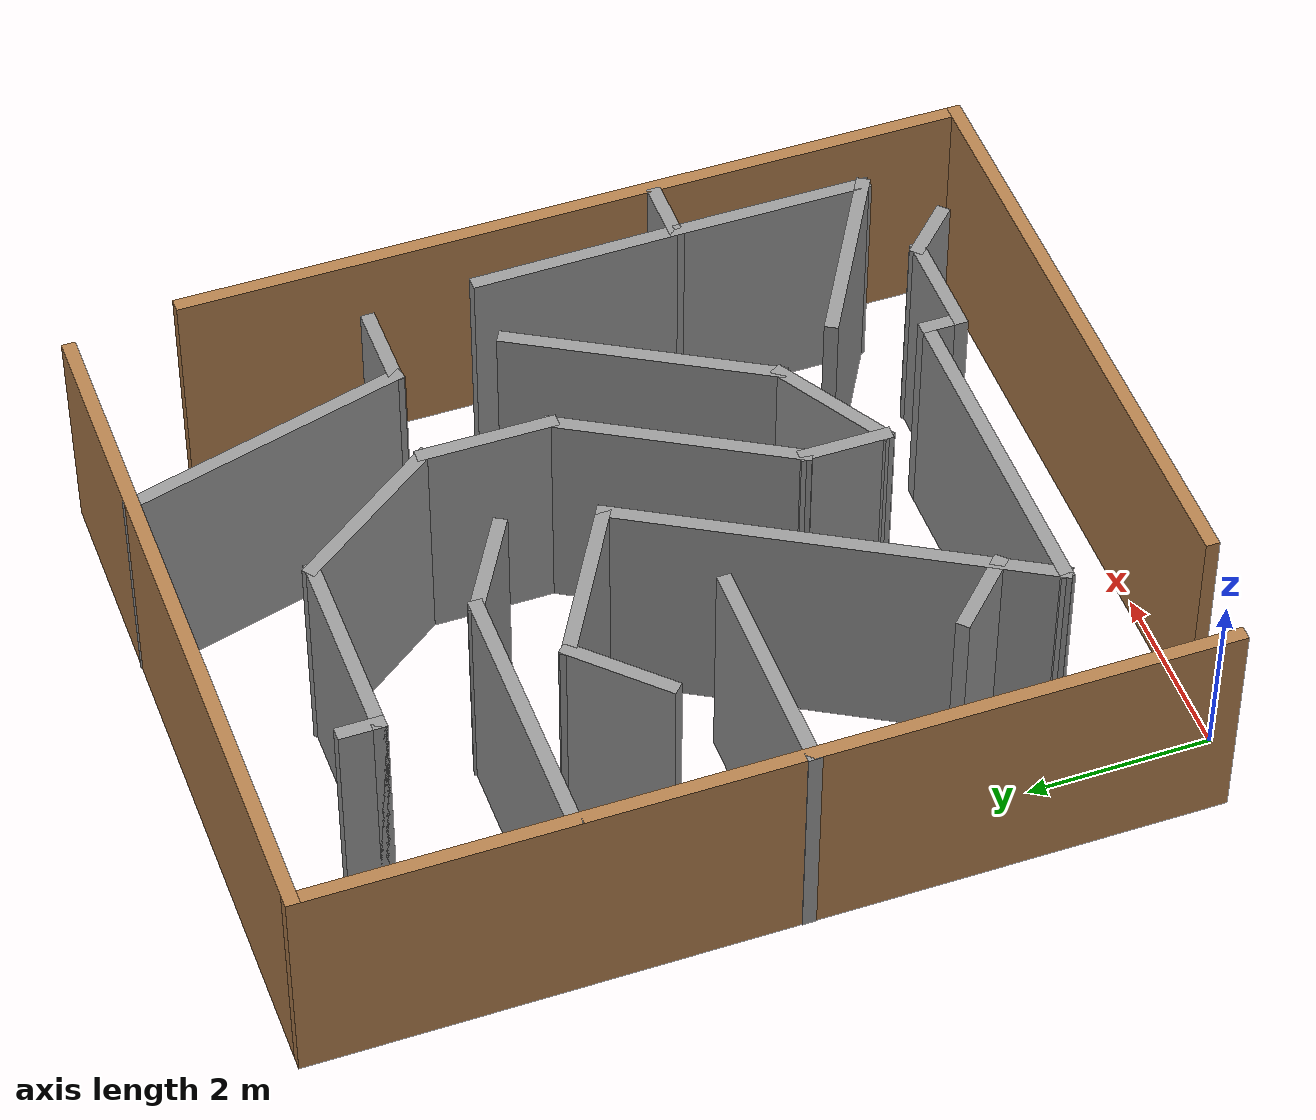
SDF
<?xml version='1.0'?>
<sdf version='1.7'>
  <model name='maze_2'>
    <pose>3.19542 4.92683 0 0 -0 0</pose>
    <link name='Wall_12'>
      <collision name='Wall_12_Collision'>
        <geometry>
          <box>
            <size>8.75 0.15 2.5</size>
          </box>
        </geometry>
        <pose>0 0 1.25 0 -0 0</pose>
      </collision>
      <visual name='Wall_12_Visual'>
        <pose>0 0 1.25 0 -0 0</pose>
        <geometry>
          <box>
            <size>8.75 0.15 2.5</size>
          </box>
        </geometry>
        <material>
          <script>
            <uri>file://media/materials/scripts/gazebo.material</uri>
            <name>Gazebo/Wood</name>
          </script>
          <ambient>0.996078 0.47451 0.0196078 1</ambient>
        </material>
        <meta>
          <layer>0</layer>
        </meta>
      </visual>
      <pose>3.92259 -0.630829 0 0 -0 -1.5708</pose>
    </link>
    <link name='Wall_13'>
      <collision name='Wall_13_Collision'>
        <geometry>
          <box>
            <size>6.75 0.15 2.5</size>
          </box>
        </geometry>
        <pose>0 0 1.25 0 -0 0</pose>
      </collision>
      <visual name='Wall_13_Visual'>
        <pose>0 0 1.25 0 -0 0</pose>
        <geometry>
          <box>
            <size>6.75 0.15 2.5</size>
          </box>
        </geometry>
        <material>
          <script>
            <uri>file://media/materials/scripts/gazebo.material</uri>
            <name>Gazebo/Wood</name>
          </script>
          <ambient>0.996078 0.47451 0.0196078 1</ambient>
        </material>
        <meta>
          <layer>0</layer>
        </meta>
      </visual>
      <pose>0.622594 -4.93083 0 0 -0 3.14159</pose>
    </link>
    <link name='Wall_15'>
      <collision name='Wall_15_Collision'>
        <geometry>
          <box>
            <size>4.75 0.15 2.5</size>
          </box>
        </geometry>
        <pose>0 0 1.25 0 -0 0</pose>
      </collision>
      <visual name='Wall_15_Visual'>
        <pose>0 0 1.25 0 -0 0</pose>
        <geometry>
          <box>
            <size>4.75 0.15 2.5</size>
          </box>
        </geometry>
        <material>
          <script>
            <uri>file://media/materials/scripts/gazebo.material</uri>
            <name>Gazebo/Grey</name>
          </script>
          <ambient>0 0 0 1</ambient>
        </material>
        <meta>
          <layer>0</layer>
        </meta>
      </visual>
      <pose>-1.44258 -1.42975 0 0 -0 1.0472</pose>
    </link>
    <link name='Wall_16'>
      <collision name='Wall_16_Collision'>
        <geometry>
          <box>
            <size>2 0.15 2.5</size>
          </box>
        </geometry>
        <pose>0 0 1.25 0 -0 0</pose>
      </collision>
      <visual name='Wall_16_Visual'>
        <pose>0 0 1.25 0 -0 0</pose>
        <geometry>
          <box>
            <size>2 0.15 2.5</size>
          </box>
        </geometry>
        <material>
          <script>
            <uri>file://media/materials/scripts/gazebo.material</uri>
            <name>Gazebo/Grey</name>
          </script>
          <ambient>0 0 0 1</ambient>
        </material>
        <meta>
          <layer>0</layer>
        </meta>
      </visual>
      <pose>-1.09366 1.02461 0 0 -0 2.61799</pose>
    </link>
    <link name='Wall_18'>
      <collision name='Wall_18_Collision'>
        <geometry>
          <box>
            <size>1 0.15 2.5</size>
          </box>
        </geometry>
        <pose>0 0 1.25 0 -0 0</pose>
      </collision>
      <visual name='Wall_18_Visual'>
        <pose>0 0 1.25 0 -0 0</pose>
        <geometry>
          <box>
            <size>1 0.15 2.5</size>
          </box>
        </geometry>
        <material>
          <script>
            <uri>file://media/materials/scripts/gazebo.material</uri>
            <name>Gazebo/Grey</name>
          </script>
          <ambient>0 0 0 1</ambient>
        </material>
        <meta>
          <layer>0</layer>
        </meta>
      </visual>
      <pose>-2.5473 -2.56248 0 0 -0 2.35619</pose>
    </link>
    <link name='Wall_20'>
      <collision name='Wall_20_Collision'>
        <geometry>
          <box>
            <size>2.5 0.15 2.5</size>
          </box>
        </geometry>
        <pose>0 0 1.25 0 -0 0</pose>
      </collision>
      <visual name='Wall_20_Visual'>
        <pose>0 0 1.25 0 -0 0</pose>
        <geometry>
          <box>
            <size>2.5 0.15 2.5</size>
          </box>
        </geometry>
        <material>
          <script>
            <uri>file://media/materials/scripts/gazebo.material</uri>
            <name>Gazebo/Grey</name>
          </script>
          <ambient>0 0 0 1</ambient>
        </material>
        <meta>
          <layer>0</layer>
        </meta>
      </visual>
      <pose>-2.74759 -0.256182 0 0 -0 0</pose>
    </link>
    <link name='Wall_22'>
      <collision name='Wall_22_Collision'>
        <geometry>
          <box>
            <size>1.25 0.15 2.5</size>
          </box>
        </geometry>
        <pose>0 0 1.25 0 -0 0</pose>
      </collision>
      <visual name='Wall_22_Visual'>
        <pose>0 0 1.25 0 -0 0</pose>
        <geometry>
          <box>
            <size>1.25 0.15 2.5</size>
          </box>
        </geometry>
        <material>
          <script>
            <uri>file://media/materials/scripts/gazebo.material</uri>
            <name>Gazebo/Grey</name>
          </script>
          <ambient>0 0 0 1</ambient>
        </material>
        <meta>
          <layer>0</layer>
        </meta>
      </visual>
      <pose>-2.28364 1.0982 0 0 -0 -2.35619</pose>
    </link>
    <link name='Wall_24'>
      <collision name='Wall_24_Collision'>
        <geometry>
          <box>
            <size>3 0.15 2.5</size>
          </box>
        </geometry>
        <pose>0 0 1.25 0 -0 0</pose>
      </collision>
      <visual name='Wall_24_Visual'>
        <pose>0 0 1.25 0 -0 0</pose>
        <geometry>
          <box>
            <size>3 0.15 2.5</size>
          </box>
        </geometry>
        <material>
          <script>
            <uri>file://media/materials/scripts/gazebo.material</uri>
            <name>Gazebo/Grey</name>
          </script>
          <ambient>0 0 0 1</ambient>
        </material>
        <meta>
          <layer>0</layer>
        </meta>
      </visual>
      <pose>-2.48295 2.1404 0 0 -0 0</pose>
    </link>
    <link name='Wall_25'>
      <collision name='Wall_25_Collision'>
        <geometry>
          <box>
            <size>1.25 0.15 2.5</size>
          </box>
        </geometry>
        <pose>0 0 1.25 0 -0 0</pose>
      </collision>
      <visual name='Wall_25_Visual'>
        <pose>0 0 1.25 0 -0 0</pose>
        <geometry>
          <box>
            <size>1.25 0.15 2.5</size>
          </box>
        </geometry>
        <material>
          <script>
            <uri>file://media/materials/scripts/gazebo.material</uri>
            <name>Gazebo/Grey</name>
          </script>
          <ambient>0 0 0 1</ambient>
        </material>
        <meta>
          <layer>0</layer>
        </meta>
      </visual>
      <pose>-0.581633 1.8654 0 0 -0 -0.523599</pose>
    </link>
    <link name='Wall_27'>
      <collision name='Wall_27_Collision'>
        <geometry>
          <box>
            <size>3.75 0.15 2.5</size>
          </box>
        </geometry>
        <pose>0 0 1.25 0 -0 0</pose>
      </collision>
      <visual name='Wall_27_Visual'>
        <pose>0 0 1.25 0 -0 0</pose>
        <geometry>
          <box>
            <size>3.75 0.15 2.5</size>
          </box>
        </geometry>
        <material>
          <script>
            <uri>file://media/materials/scripts/gazebo.material</uri>
            <name>Gazebo/Grey</name>
          </script>
          <ambient>0 0 0 1</ambient>
        </material>
        <meta>
          <layer>0</layer>
        </meta>
      </visual>
      <pose>-0.792584 -3.42161 0 0 -0 0</pose>
    </link>
    <link name='Wall_29'>
      <collision name='Wall_29_Collision'>
        <geometry>
          <box>
            <size>0.5 0.15 2.5</size>
          </box>
        </geometry>
        <pose>0 0 1.25 0 -0 0</pose>
      </collision>
      <visual name='Wall_29_Visual'>
        <pose>0 0 1.25 0 -0 0</pose>
        <geometry>
          <box>
            <size>0.5 0.15 2.5</size>
          </box>
        </geometry>
        <material>
          <script>
            <uri>file://media/materials/scripts/gazebo.material</uri>
            <name>Gazebo/Grey</name>
          </script>
          <ambient>0 0 0 1</ambient>
        </material>
        <meta>
          <layer>0</layer>
        </meta>
      </visual>
      <pose>1.00742 -3.59661 0 0 -0 -1.5708</pose>
    </link>
    <link name='Wall_3'>
      <collision name='Wall_3_Collision'>
        <geometry>
          <box>
            <size>9.75 0.15 2.5</size>
          </box>
        </geometry>
        <pose>0 0 1.25 0 -0 0</pose>
      </collision>
      <visual name='Wall_3_Visual'>
        <pose>0 0 1.25 0 -0 0</pose>
        <geometry>
          <box>
            <size>9.75 0.15 2.5</size>
          </box>
        </geometry>
        <material>
          <script>
            <uri>file://media/materials/scripts/gazebo.material</uri>
            <name>Gazebo/Wood</name>
          </script>
          <ambient>0.996078 0.47451 0.0196078 1</ambient>
        </material>
        <meta>
          <layer>0</layer>
        </meta>
      </visual>
      <pose>-3.91589 0.119305 0 0 -0 1.5708</pose>
    </link>
    <link name='Wall_30'>
      <collision name='Wall_30_Collision'>
        <geometry>
          <box>
            <size>1.25 0.15 2.5</size>
          </box>
        </geometry>
        <pose>0 0 1.25 0 -0 0</pose>
      </collision>
      <visual name='Wall_30_Visual'>
        <pose>0 0 1.25 0 -0 0</pose>
        <geometry>
          <box>
            <size>1.25 0.15 2.5</size>
          </box>
        </geometry>
        <material>
          <script>
            <uri>file://media/materials/scripts/gazebo.material</uri>
            <name>Gazebo/Grey</name>
          </script>
          <ambient>0 0 0 1</ambient>
        </material>
        <meta>
          <layer>0</layer>
        </meta>
      </visual>
      <pose>1.55741 -3.77161 0 0 -0 0</pose>
    </link>
    <link name='Wall_31'>
      <collision name='Wall_31_Collision'>
        <geometry>
          <box>
            <size>0.75 0.15 2.5</size>
          </box>
        </geometry>
        <pose>0 0 1.25 0 -0 0</pose>
      </collision>
      <visual name='Wall_31_Visual'>
        <pose>0 0 1.25 0 -0 0</pose>
        <geometry>
          <box>
            <size>0.75 0.15 2.5</size>
          </box>
        </geometry>
        <material>
          <script>
            <uri>file://media/materials/scripts/gazebo.material</uri>
            <name>Gazebo/Grey</name>
          </script>
          <ambient>0 0 0 1</ambient>
        </material>
        <meta>
          <layer>0</layer>
        </meta>
      </visual>
      <pose>2.31955 -3.98374 0 0 -0 -0.785398</pose>
    </link>
    <link name='Wall_34'>
      <collision name='Wall_34_Collision'>
        <geometry>
          <box>
            <size>2.25 0.15 2.5</size>
          </box>
        </geometry>
        <pose>0 0 1.25 0 -0 0</pose>
      </collision>
      <visual name='Wall_34_Visual'>
        <pose>0 0 1.25 0 -0 0</pose>
        <geometry>
          <box>
            <size>2.25 0.15 2.5</size>
          </box>
        </geometry>
        <material>
          <script>
            <uri>file://media/materials/scripts/gazebo.material</uri>
            <name>Gazebo/Grey</name>
          </script>
          <ambient>0 0 0 1</ambient>
        </material>
        <meta>
          <layer>0</layer>
        </meta>
      </visual>
      <pose>2.30704 -3.05659 0 0 -0 -0.523599</pose>
    </link>
    <link name='Wall_35'>
      <collision name='Wall_35_Collision'>
        <geometry>
          <box>
            <size>2.25 0.15 2.5</size>
          </box>
        </geometry>
        <pose>0 0 1.25 0 -0 0</pose>
      </collision>
      <visual name='Wall_35_Visual'>
        <pose>0 0 1.25 0 -0 0</pose>
        <geometry>
          <box>
            <size>2.25 0.15 2.5</size>
          </box>
        </geometry>
        <material>
          <script>
            <uri>file://media/materials/scripts/gazebo.material</uri>
            <name>Gazebo/Grey</name>
          </script>
          <ambient>0 0 0 1</ambient>
        </material>
        <meta>
          <layer>0</layer>
        </meta>
      </visual>
      <pose>3.21637 -2.53159 0 0 -0 1.5708</pose>
    </link>
    <link name='Wall_36'>
      <collision name='Wall_36_Collision'>
        <geometry>
          <box>
            <size>0.75 0.15 2.5</size>
          </box>
        </geometry>
        <pose>0 0 1.25 0 -0 0</pose>
      </collision>
      <visual name='Wall_36_Visual'>
        <pose>0 0 1.25 0 -0 0</pose>
        <geometry>
          <box>
            <size>0.75 0.15 2.5</size>
          </box>
        </geometry>
        <material>
          <script>
            <uri>file://media/materials/scripts/gazebo.material</uri>
            <name>Gazebo/Grey</name>
          </script>
          <ambient>0 0 0 1</ambient>
        </material>
        <meta>
          <layer>0</layer>
        </meta>
      </visual>
      <pose>3.51636 -1.48159 0 0 -0 0</pose>
    </link>
    <link name='Wall_39'>
      <collision name='Wall_39_Collision'>
        <geometry>
          <box>
            <size>1.5 0.15 2.5</size>
          </box>
        </geometry>
        <pose>0 0 1.25 0 -0 0</pose>
      </collision>
      <visual name='Wall_39_Visual'>
        <pose>0 0 1.25 0 -0 0</pose>
        <geometry>
          <box>
            <size>1.5 0.15 2.5</size>
          </box>
        </geometry>
        <material>
          <script>
            <uri>file://media/materials/scripts/gazebo.material</uri>
            <name>Gazebo/Grey</name>
          </script>
          <ambient>0 0 0 1</ambient>
        </material>
        <meta>
          <layer>0</layer>
        </meta>
      </visual>
      <pose>0.331293 -2.11272 0 0 -0 -2.61799</pose>
    </link>
    <link name='Wall_41'>
      <collision name='Wall_41_Collision'>
        <geometry>
          <box>
            <size>1 0.15 2.5</size>
          </box>
        </geometry>
        <pose>0 0 1.25 0 -0 0</pose>
      </collision>
      <visual name='Wall_41_Visual'>
        <pose>0 0 1.25 0 -0 0</pose>
        <geometry>
          <box>
            <size>1 0.15 2.5</size>
          </box>
        </geometry>
        <material>
          <script>
            <uri>file://media/materials/scripts/gazebo.material</uri>
            <name>Gazebo/Grey</name>
          </script>
          <ambient>0 0 0 1</ambient>
        </material>
        <meta>
          <layer>0</layer>
        </meta>
      </visual>
      <pose>-0.253274 -2.02522 0 0 -0 1.5708</pose>
    </link>
    <link name='Wall_42'>
      <collision name='Wall_42_Collision'>
        <geometry>
          <box>
            <size>2.75 0.15 2.5</size>
          </box>
        </geometry>
        <pose>0 0 1.25 0 -0 0</pose>
      </collision>
      <visual name='Wall_42_Visual'>
        <pose>0 0 1.25 0 -0 0</pose>
        <geometry>
          <box>
            <size>2.75 0.15 2.5</size>
          </box>
        </geometry>
        <material>
          <script>
            <uri>file://media/materials/scripts/gazebo.material</uri>
            <name>Gazebo/Grey</name>
          </script>
          <ambient>0 0 0 1</ambient>
        </material>
        <meta>
          <layer>0</layer>
        </meta>
      </visual>
      <pose>0.396726 -0.474385 0 0 -0 1.0472</pose>
    </link>
    <link name='Wall_44'>
      <collision name='Wall_44_Collision'>
        <geometry>
          <box>
            <size>3 0.15 2.5</size>
          </box>
        </geometry>
        <pose>0 0 1.25 0 -0 0</pose>
      </collision>
      <visual name='Wall_44_Visual'>
        <pose>0 0 1.25 0 -0 0</pose>
        <geometry>
          <box>
            <size>3 0.15 2.5</size>
          </box>
        </geometry>
        <material>
          <script>
            <uri>file://media/materials/scripts/gazebo.material</uri>
            <name>Gazebo/Grey</name>
          </script>
          <ambient>0 0 0 1</ambient>
        </material>
        <meta>
          <layer>0</layer>
        </meta>
      </visual>
      <pose>1.62836 -0.541132 0 0 -0 1.0472</pose>
    </link>
    <link name='Wall_46'>
      <collision name='Wall_46_Collision'>
        <geometry>
          <box>
            <size>2.32469 0.15 2.5</size>
          </box>
        </geometry>
        <pose>0 0 1.25 0 -0 0</pose>
      </collision>
      <visual name='Wall_46_Visual'>
        <pose>0 0 1.25 0 -0 0</pose>
        <geometry>
          <box>
            <size>2.32469 0.15 2.5</size>
          </box>
        </geometry>
        <material>
          <script>
            <uri>file://media/materials/scripts/gazebo.material</uri>
            <name>Gazebo/Grey</name>
          </script>
          <ambient>0 0 0 1</ambient>
        </material>
        <meta>
          <layer>0</layer>
        </meta>
      </visual>
      <pose>3.20361 -0.394318 0 0 -0 -1.55907</pose>
    </link>
    <link name='Wall_48'>
      <collision name='Wall_48_Collision'>
        <geometry>
          <box>
            <size>1.5 0.15 2.5</size>
          </box>
        </geometry>
        <pose>0 0 1.25 0 -0 0</pose>
      </collision>
      <visual name='Wall_48_Visual'>
        <pose>0 0 1.25 0 -0 0</pose>
        <geometry>
          <box>
            <size>1.5 0.15 2.5</size>
          </box>
        </geometry>
        <material>
          <script>
            <uri>file://media/materials/scripts/gazebo.material</uri>
            <name>Gazebo/Grey</name>
          </script>
          <ambient>0 0 0 1</ambient>
        </material>
        <meta>
          <layer>0</layer>
        </meta>
      </visual>
      <pose>1.04673 1.32645 0 0 -0 1.5708</pose>
    </link>
    <link name='Wall_49'>
      <collision name='Wall_49_Collision'>
        <geometry>
          <box>
            <size>2.01011 0.15 2.5</size>
          </box>
        </geometry>
        <pose>0 0 1.25 0 -0 0</pose>
      </collision>
      <visual name='Wall_49_Visual'>
        <pose>0 0 1.25 0 -0 0</pose>
        <geometry>
          <box>
            <size>2.01011 0.15 2.5</size>
          </box>
        </geometry>
        <material>
          <script>
            <uri>file://media/materials/scripts/gazebo.material</uri>
            <name>Gazebo/Grey</name>
          </script>
          <ambient>0 0 0 1</ambient>
        </material>
        <meta>
          <layer>0</layer>
        </meta>
      </visual>
      <pose>0.496726 2.75145 0 0 -0 2.20355</pose>
    </link>
    <link name='Wall_50'>
      <collision name='Wall_50_Collision'>
        <geometry>
          <box>
            <size>2.25 0.15 2.5</size>
          </box>
        </geometry>
        <pose>0 0 1.25 0 -0 0</pose>
      </collision>
      <visual name='Wall_50_Visual'>
        <pose>0 0 1.25 0 -0 0</pose>
        <geometry>
          <box>
            <size>2.25 0.15 2.5</size>
          </box>
        </geometry>
        <material>
          <script>
            <uri>file://media/materials/scripts/gazebo.material</uri>
            <name>Gazebo/Grey</name>
          </script>
          <ambient>0 0 0 1</ambient>
        </material>
        <meta>
          <layer>0</layer>
        </meta>
      </visual>
      <pose>-1.10327 3.50145 0 0 -0 3.14159</pose>
    </link>
    <link name='Wall_51'>
      <collision name='Wall_51_Collision'>
        <geometry>
          <box>
            <size>0.5 0.15 2.5</size>
          </box>
        </geometry>
        <pose>0 0 1.25 0 -0 0</pose>
      </collision>
      <visual name='Wall_51_Visual'>
        <pose>0 0 1.25 0 -0 0</pose>
        <geometry>
          <box>
            <size>0.5 0.15 2.5</size>
          </box>
        </geometry>
        <material>
          <script>
            <uri>file://media/materials/scripts/gazebo.material</uri>
            <name>Gazebo/Grey</name>
          </script>
          <ambient>0 0 0 1</ambient>
        </material>
        <meta>
          <layer>0</layer>
        </meta>
      </visual>
      <pose>-2.15327 3.67645 0 0 -0 1.5708</pose>
    </link>
    <link name='Wall_54'>
      <collision name='Wall_54_Collision'>
        <geometry>
          <box>
            <size>3.25 0.15 2.5</size>
          </box>
        </geometry>
        <pose>0 0 1.25 0 -0 0</pose>
      </collision>
      <visual name='Wall_54_Visual'>
        <pose>0 0 1.25 0 -0 0</pose>
        <geometry>
          <box>
            <size>3.25 0.15 2.5</size>
          </box>
        </geometry>
        <material>
          <script>
            <uri>file://media/materials/scripts/gazebo.material</uri>
            <name>Gazebo/Grey</name>
          </script>
          <ambient>0 0 0 1</ambient>
        </material>
        <meta>
          <layer>0</layer>
        </meta>
      </visual>
      <pose>1.79815 3.41679 0 0 -0 -1.309</pose>
    </link>
    <link name='Wall_55'>
      <collision name='Wall_55_Collision'>
        <geometry>
          <box>
            <size>1 0.15 2.5</size>
          </box>
        </geometry>
        <pose>0 0 1.25 0 -0 0</pose>
      </collision>
      <visual name='Wall_55_Visual'>
        <pose>0 0 1.25 0 -0 0</pose>
        <geometry>
          <box>
            <size>1 0.15 2.5</size>
          </box>
        </geometry>
        <material>
          <script>
            <uri>file://media/materials/scripts/gazebo.material</uri>
            <name>Gazebo/Grey</name>
          </script>
          <ambient>0 0 0 1</ambient>
        </material>
        <meta>
          <layer>0</layer>
        </meta>
      </visual>
      <pose>2.62432 1.9196 0 0 -0 0</pose>
    </link>
    <link name='Wall_8'>
      <collision name='Wall_8_Collision'>
        <geometry>
          <box>
            <size>7.75 0.15 2.5</size>
          </box>
        </geometry>
        <pose>0 0 1.25 0 -0 0</pose>
      </collision>
      <visual name='Wall_8_Visual'>
        <pose>0 0 1.25 0 -0 0</pose>
        <geometry>
          <box>
            <size>7.75 0.15 2.5</size>
          </box>
        </geometry>
        <material>
          <script>
            <uri>file://media/materials/scripts/gazebo.material</uri>
            <name>Gazebo/Wood</name>
          </script>
          <ambient>0.996078 0.47451 0.0196078 1</ambient>
        </material>
        <meta>
          <layer>0</layer>
        </meta>
      </visual>
      <pose>-0.115891 4.9193 0 0 -0 0</pose>
    </link>
    <static>1</static>
  </model>
</sdf>
